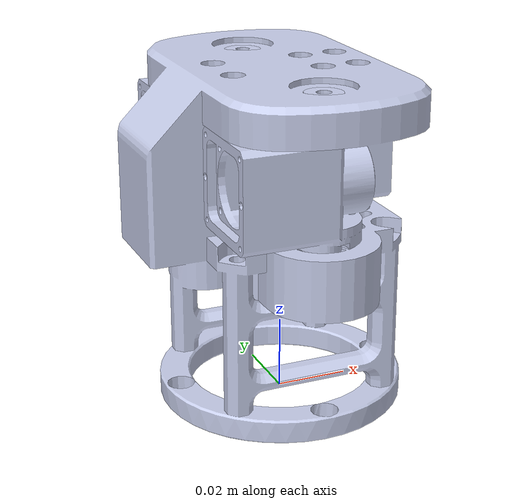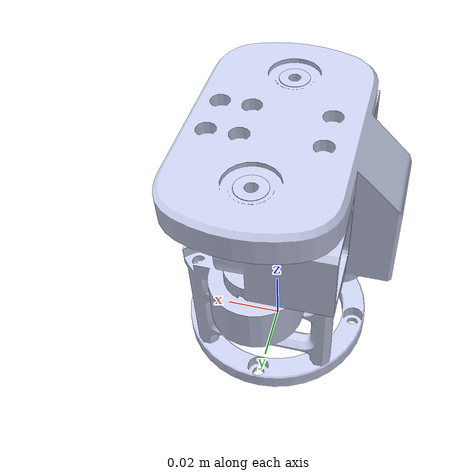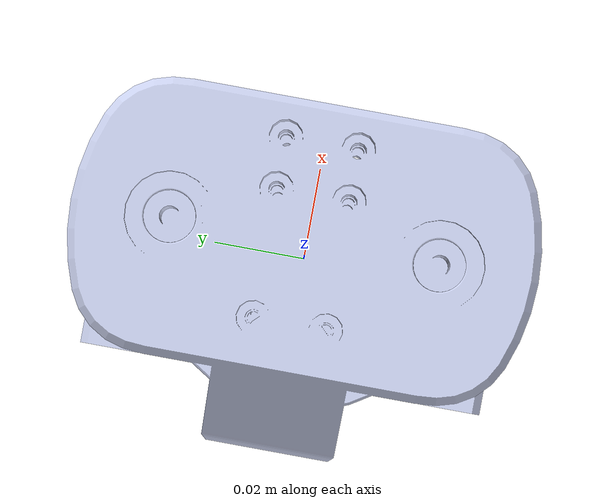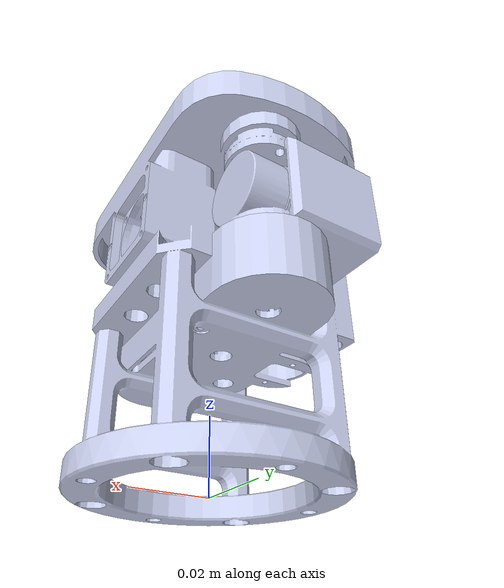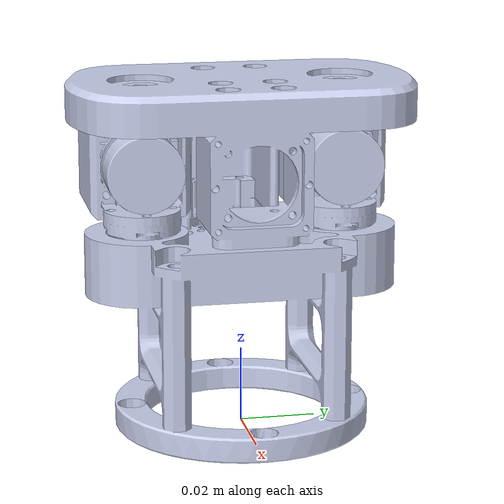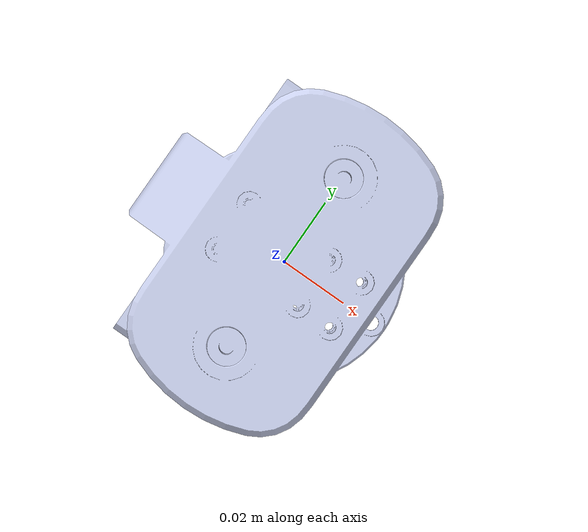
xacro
<?xml version="1.0" encoding="utf-8"?>
<robot name="gripper_base" xmlns:xacro="http://www.ros.org/wiki/xacro">>
  <xacro:include filename="$(find gripper_base)/urdf/gripper_base.gazebo"/>
  <link
    name="gripper_base_link">
    <inertial>
      <origin
        xyz="-0.0019571 1.9748E-05 0.052522"
        rpy="0 0 0" />
      <mass
        value="0.088404" />
      <inertia
        ixx="3.3349E-05"
        ixy="1.4704E-08"
        ixz="-2.4848E-07"
        iyy="2.6097E-05"
        iyz="3.2395E-09"
        izz="5.3482E-05" />
    </inertial>
    <visual>
      <origin
        xyz="0 0 0"
        rpy="0 0 0" />
      <geometry>
        <mesh
          filename="package://gripper_base/meshes/gripper_base_link.STL" />
      </geometry>
      <material
        name="">
        <color
          rgba="0.79216 0.81961 0.93333 1" />
      </material>
    </visual>
    <collision>
      <origin
        xyz="0 0 0"
        rpy="0 0 0" />
      <geometry>
        <mesh
          filename="package://gripper_base/meshes/gripper_base_link.STL" />
      </geometry>
    </collision>
  </link>
  <link
    name="l_finger_link">
    <inertial>
      <origin
        xyz="-0.0053798 -5.6205E-16 0.012857"
        rpy="0 0 0" />
      <mass
        value="0.014765" />
      <inertia
        ixx="1.6221E-06"
        ixy="-1.2909E-22"
        ixz="-3.1553E-22"
        iyy="1.5417E-06"
        iyz="1.1779E-23"
        izz="1.4779E-06" />
    </inertial>
    <visual>
      <origin
        xyz="0 0 0"
        rpy="0 0 0" />
      <geometry>
        <mesh
          filename="package://gripper_base/meshes/l_finger_link.STL" />
      </geometry>
      <material
        name="">
        <color
          rgba="0.79216 0.81961 0.93333 1" />
      </material>
    </visual>
    <collision>
      <origin
        xyz="0 0 0"
        rpy="0 0 0" />
      <geometry>
        <mesh
          filename="package://gripper_base/meshes/l_finger_link.STL" />
      </geometry>
    </collision>
  </link>

  <link name="world"/>

  <joint name="fixed123" type="fixed">
    <origin
      xyz="0 0 0"
      rpy="0 0 0" />
    <parent
      link="world" />
    <child
      link="gripper_base_link" />
    <axis
      xyz="0 0 0" />
  </joint>

  <joint
    name="l_finger_joint"
    type="continuous">
    <origin
      xyz="0 0.026 0.0565"
      rpy="0 0 0" />
    <parent
      link="gripper_base_link" />
    <child
      link="l_finger_link" />
    <axis
      xyz="0 0 -1" />
  </joint>
  <link
    name="r_finger_link">
    <inertial>
      <origin
        xyz="-0.0053798 -8.1532E-16 0.012857"
        rpy="0 0 0" />
      <mass
        value="0.014765" />
      <inertia
        ixx="1.6221E-06"
        ixy="1.8121E-21"
        ixz="-1.2879E-22"
        iyy="1.5417E-06"
        iyz="1.4405E-22"
        izz="1.4779E-06" />
    </inertial>
    <visual>
      <origin
        xyz="0 0 0"
        rpy="0 0 0" />
      <geometry>
        <mesh
          filename="package://gripper_base/meshes/r_finger_link.STL" />
      </geometry>
      <material
        name="">
        <color
          rgba="0.79216 0.81961 0.93333 1" />
      </material>
    </visual>
    <collision>
      <origin
        xyz="0 0 0"
        rpy="0 0 0" />
      <geometry>
        <mesh
          filename="package://gripper_base/meshes/r_finger_link.STL" />
      </geometry>
    </collision>
  </link>
  <joint
    name="r_finger_joint"
    type="continuous">
    <origin
      xyz="0 -0.026 0.0565"
      rpy="0 0 0" />
    <parent
      link="gripper_base_link" />
    <child
      link="r_finger_link" />
    <axis
      xyz="0 0 -1" />
  </joint>
</robot>
